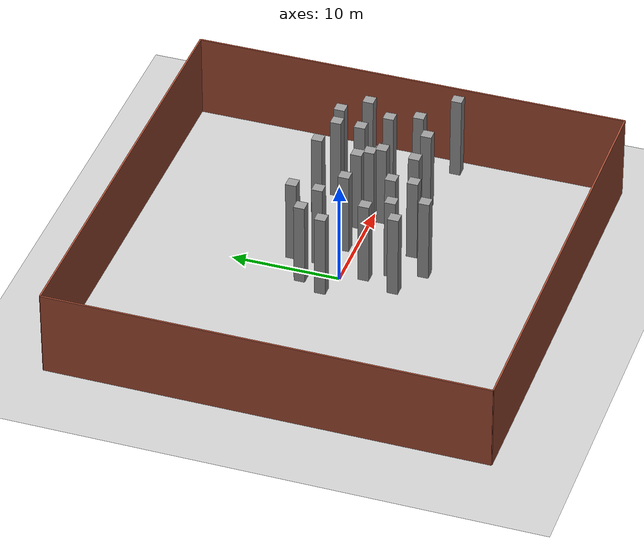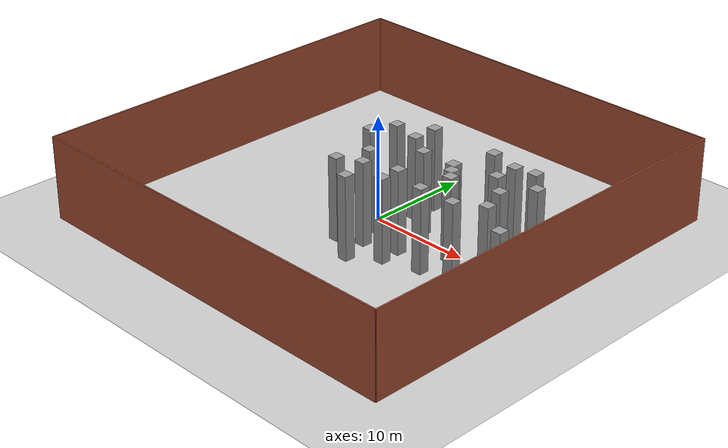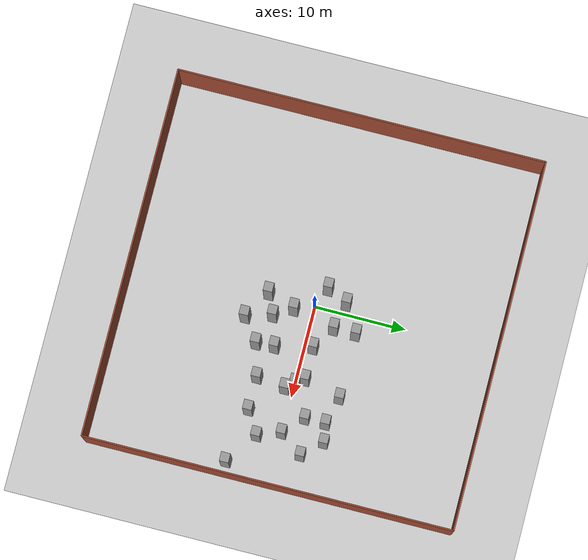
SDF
<sdf version="1.7">
 <world name="default">
  <model name="ground_plane">
   <static>1</static>
   <link name="link">
    <collision name="collision">
     <geometry><plane><normal>0 0 1</normal><size>100 100</size></plane></geometry>
     <surface>
      <contact><collide_bitmask>65535</collide_bitmask></contact>
      <friction><ode><mu>100</mu><mu2>50</mu2></ode></friction>
     </surface>
    </collision>
    <visual name="visual">
     <cast_shadows>0</cast_shadows>
     <geometry><plane><normal>0 0 1</normal><size>100 100</size></plane></geometry>
     <material>
      <script><uri>file://media/materials/scripts/gazebo.material</uri><name>Gazebo/Grey</name></script>
     </material>
    </visual>
   </link>
  </model>
  <model name="sim_room_square">
   <link name="Wall_14">
    <collision name="Wall_14_Collision">
     <geometry><box><size>40 0.15 8</size></box></geometry>
     <pose>0 0 4 0 -0 0</pose>
    </collision>
    <visual name="Wall_14_Visual">
     <pose>0 0 4 0 -0 0</pose>
     <geometry><box><size>40 0.15 8</size></box></geometry>
     <material>
      <script><uri>file://media/materials/scripts/gazebo.material</uri><name>Gazebo/Bricks</name></script>
      <ambient>1 1 1 1</ambient>
     </material>
     <meta><layer>0</layer></meta>
    </visual>
    <pose>20 -0 0 0 -0 -1.5708</pose>
   </link>
   <link name="Wall_15">
    <collision name="Wall_15_Collision">
     <geometry><box><size>40 0.15 8</size></box></geometry>
     <pose>0 0 4 0 -0 0</pose>
    </collision>
    <visual name="Wall_15_Visual">
     <pose>0 0 4 0 -0 0</pose>
     <geometry><box><size>40 0.15 8</size></box></geometry>
     <material>
      <script><uri>file://media/materials/scripts/gazebo.material</uri><name>Gazebo/Bricks</name></script>
      <ambient>1 1 1 1</ambient>
     </material>
     <meta><layer>0</layer></meta>
    </visual>
    <pose>0 -20 0 0 -0 3.14159</pose>
   </link>
   <link name="Wall_16">
    <collision name="Wall_16_Collision">
     <geometry><box><size>40 0.15 8</size></box></geometry>
     <pose>0 0 4 0 -0 0</pose>
    </collision>
    <visual name="Wall_16_Visual">
     <pose>0 0 4 0 -0 0</pose>
     <geometry><box><size>40 0.15 8</size></box></geometry>
     <material>
      <script><uri>file://media/materials/scripts/gazebo.material</uri><name>Gazebo/Bricks</name></script>
      <ambient>1 1 1 1</ambient>
     </material>
     <meta><layer>0</layer></meta>
    </visual>
    <pose>-20 -0 0 0 -0 1.5708</pose>
   </link>
   <link name="Wall_19">
    <collision name="Wall_19_Collision">
     <geometry><box><size>40 0.15 8</size></box></geometry>
     <pose>0 0 4 0 -0 0</pose>
    </collision>
    <visual name="Wall_19_Visual">
     <pose>0 0 4 0 -0 0</pose>
     <geometry><box><size>40 0.15 8</size></box></geometry>
     <material>
      <script><uri>file://media/materials/scripts/gazebo.material</uri><name>Gazebo/Bricks</name></script>
      <ambient>1 1 1 1</ambient>
     </material>
     <meta><layer>0</layer></meta>
    </visual>
    <pose>0 20 0 0 -0 0</pose>
   </link>
   <static>1</static>
  </model>
  <model name="unit_box_static95_clone">
   <link name="link">
    <inertial>
     <mass>1</mass>
     <inertia>
      <ixx>0.166667</ixx>
      <ixy>0</ixy>
      <ixz>0</ixz>
      <iyy>0.166667</iyy>
      <iyz>0</iyz>
      <izz>0.166667</izz>
     </inertia>
    </inertial>
    <visual name="visual">
     <geometry><box><size>1 1 8</size></box></geometry>
     <material>
      <script><name>Gazebo/Grey</name><uri>file://media/materials/scripts/gazebo.material</uri></script>
      <shader type="pixel"/>
     </material>
    </visual>
    <collision name="collision">
     <geometry><box><size>1 1 8</size></box></geometry>
     <surface>
      <friction>
       <ode><mu>1</mu><mu2>1</mu2><fdir1>0 0 0</fdir1><slip1>0</slip1><slip2>0</slip2></ode>
       <torsional>
        <coefficient>1</coefficient>
        <patch_radius>0</patch_radius>
        <surface_radius>0</surface_radius>
        <use_patch_radius>1</use_patch_radius>
        <ode><slip>0</slip></ode>
       </torsional>
      </friction>
      <bounce><restitution_coefficient>0</restitution_coefficient><threshold>1e+06</threshold></bounce>
      <contact>
       <collide_without_contact>0</collide_without_contact>
       <collide_without_contact_bitmask>1</collide_without_contact_bitmask>
       <collide_bitmask>1</collide_bitmask>
       <ode>
        <soft_cfm>0</soft_cfm>
        <soft_erp>0.2</soft_erp>
        <kp>1e+13</kp>
        <kd>1</kd>
        <max_vel>0.01</max_vel>
        <min_depth>0</min_depth>
       </ode>
       <bullet>
        <split_impulse>1</split_impulse>
        <split_impulse_penetration_threshold>-0.01</split_impulse_penetration_threshold>
        <soft_cfm>0</soft_cfm>
        <soft_erp>0.2</soft_erp>
        <kp>1e+13</kp>
        <kd>1</kd>
       </bullet>
      </contact>
     </surface>
    </collision>
   </link>
   <static>1</static>
   <pose>4.50167 1 4 0 -0 0</pose>
  </model>
  <model name="unit_box_static95_clone_0">
   <link name="link">
    <inertial>
     <mass>1</mass>
     <inertia>
      <ixx>0.166667</ixx>
      <ixy>0</ixy>
      <ixz>0</ixz>
      <iyy>0.166667</iyy>
      <iyz>0</iyz>
      <izz>0.166667</izz>
     </inertia>
    </inertial>
    <visual name="visual">
     <geometry><box><size>1 1 8</size></box></geometry>
     <material>
      <script><name>Gazebo/Grey</name><uri>file://media/materials/scripts/gazebo.material</uri></script>
      <shader type="pixel"/>
     </material>
    </visual>
    <collision name="collision">
     <geometry><box><size>1 1 8</size></box></geometry>
     <surface>
      <friction>
       <ode><mu>1</mu><mu2>1</mu2><fdir1>0 0 0</fdir1><slip1>0</slip1><slip2>0</slip2></ode>
       <torsional>
        <coefficient>1</coefficient>
        <patch_radius>0</patch_radius>
        <surface_radius>0</surface_radius>
        <use_patch_radius>1</use_patch_radius>
        <ode><slip>0</slip></ode>
       </torsional>
      </friction>
      <bounce><restitution_coefficient>0</restitution_coefficient><threshold>1e+06</threshold></bounce>
      <contact>
       <collide_without_contact>0</collide_without_contact>
       <collide_without_contact_bitmask>1</collide_without_contact_bitmask>
       <collide_bitmask>1</collide_bitmask>
       <ode>
        <soft_cfm>0</soft_cfm>
        <soft_erp>0.2</soft_erp>
        <kp>1e+13</kp>
        <kd>1</kd>
        <max_vel>0.01</max_vel>
        <min_depth>0</min_depth>
       </ode>
       <bullet>
        <split_impulse>1</split_impulse>
        <split_impulse_penetration_threshold>-0.01</split_impulse_penetration_threshold>
        <soft_cfm>0</soft_cfm>
        <soft_erp>0.2</soft_erp>
        <kp>1e+13</kp>
        <kd>1</kd>
       </bullet>
      </contact>
     </surface>
    </collision>
   </link>
   <static>1</static>
   <pose>5.40845 -3 4 0 -0 0</pose>
  </model>
  <model name="unit_box_static95_clone_1">
   <link name="link">
    <inertial>
     <mass>1</mass>
     <inertia>
      <ixx>0.166667</ixx>
      <ixy>0</ixy>
      <ixz>0</ixz>
      <iyy>0.166667</iyy>
      <iyz>0</iyz>
      <izz>0.166667</izz>
     </inertia>
    </inertial>
    <visual name="visual">
     <geometry><box><size>1 1 8</size></box></geometry>
     <material>
      <script><name>Gazebo/Grey</name><uri>file://media/materials/scripts/gazebo.material</uri></script>
      <shader type="pixel"/>
     </material>
    </visual>
    <collision name="collision">
     <geometry><box><size>1 1 8</size></box></geometry>
     <surface>
      <friction>
       <ode><mu>1</mu><mu2>1</mu2><fdir1>0 0 0</fdir1><slip1>0</slip1><slip2>0</slip2></ode>
       <torsional>
        <coefficient>1</coefficient>
        <patch_radius>0</patch_radius>
        <surface_radius>0</surface_radius>
        <use_patch_radius>1</use_patch_radius>
        <ode><slip>0</slip></ode>
       </torsional>
      </friction>
      <bounce><restitution_coefficient>0</restitution_coefficient><threshold>1e+06</threshold></bounce>
      <contact>
       <collide_without_contact>0</collide_without_contact>
       <collide_without_contact_bitmask>1</collide_without_contact_bitmask>
       <collide_bitmask>1</collide_bitmask>
       <ode>
        <soft_cfm>0</soft_cfm>
        <soft_erp>0.2</soft_erp>
        <kp>1e+13</kp>
        <kd>1</kd>
        <max_vel>0.01</max_vel>
        <min_depth>0</min_depth>
       </ode>
       <bullet>
        <split_impulse>1</split_impulse>
        <split_impulse_penetration_threshold>-0.01</split_impulse_penetration_threshold>
        <soft_cfm>0</soft_cfm>
        <soft_erp>0.2</soft_erp>
        <kp>1e+13</kp>
        <kd>1</kd>
       </bullet>
      </contact>
     </surface>
    </collision>
   </link>
   <static>1</static>
   <pose>5.51513 -5 4 0 -0 0</pose>
  </model>
  <model name="unit_box_static95_clone_2">
   <link name="link">
    <inertial>
     <mass>1</mass>
     <inertia>
      <ixx>0.166667</ixx>
      <ixy>0</ixy>
      <ixz>0</ixz>
      <iyy>0.166667</iyy>
      <iyz>0</iyz>
      <izz>0.166667</izz>
     </inertia>
    </inertial>
    <visual name="visual">
     <geometry><box><size>1 1 8</size></box></geometry>
     <material>
      <script><name>Gazebo/Grey</name><uri>file://media/materials/scripts/gazebo.material</uri></script>
      <shader type="pixel"/>
     </material>
    </visual>
    <collision name="collision">
     <geometry><box><size>1 1 8</size></box></geometry>
     <surface>
      <friction>
       <ode><mu>1</mu><mu2>1</mu2><fdir1>0 0 0</fdir1><slip1>0</slip1><slip2>0</slip2></ode>
       <torsional>
        <coefficient>1</coefficient>
        <patch_radius>0</patch_radius>
        <surface_radius>0</surface_radius>
        <use_patch_radius>1</use_patch_radius>
        <ode><slip>0</slip></ode>
       </torsional>
      </friction>
      <bounce><restitution_coefficient>0</restitution_coefficient><threshold>1e+06</threshold></bounce>
      <contact>
       <collide_without_contact>0</collide_without_contact>
       <collide_without_contact_bitmask>1</collide_without_contact_bitmask>
       <collide_bitmask>1</collide_bitmask>
       <ode>
        <soft_cfm>0</soft_cfm>
        <soft_erp>0.2</soft_erp>
        <kp>1e+13</kp>
        <kd>1</kd>
        <max_vel>0.01</max_vel>
        <min_depth>0</min_depth>
       </ode>
       <bullet>
        <split_impulse>1</split_impulse>
        <split_impulse_penetration_threshold>-0.01</split_impulse_penetration_threshold>
        <soft_cfm>0</soft_cfm>
        <soft_erp>0.2</soft_erp>
        <kp>1e+13</kp>
        <kd>1</kd>
       </bullet>
      </contact>
     </surface>
    </collision>
   </link>
   <static>1</static>
   <pose>2.2148 -4 4 0 -0 0</pose>
  </model>
  <model name="unit_box_static95_clone_3">
   <link name="link">
    <inertial>
     <mass>1</mass>
     <inertia>
      <ixx>0.166667</ixx>
      <ixy>0</ixy>
      <ixz>0</ixz>
      <iyy>0.166667</iyy>
      <iyz>0</iyz>
      <izz>0.166667</izz>
     </inertia>
    </inertial>
    <visual name="visual">
     <geometry><box><size>1 1 8</size></box></geometry>
     <material>
      <script><name>Gazebo/Grey</name><uri>file://media/materials/scripts/gazebo.material</uri></script>
      <shader type="pixel"/>
     </material>
    </visual>
    <collision name="collision">
     <geometry><box><size>1 1 8</size></box></geometry>
     <surface>
      <friction>
       <ode><mu>1</mu><mu2>1</mu2><fdir1>0 0 0</fdir1><slip1>0</slip1><slip2>0</slip2></ode>
       <torsional>
        <coefficient>1</coefficient>
        <patch_radius>0</patch_radius>
        <surface_radius>0</surface_radius>
        <use_patch_radius>1</use_patch_radius>
        <ode><slip>0</slip></ode>
       </torsional>
      </friction>
      <bounce><restitution_coefficient>0</restitution_coefficient><threshold>1e+06</threshold></bounce>
      <contact>
       <collide_without_contact>0</collide_without_contact>
       <collide_without_contact_bitmask>1</collide_without_contact_bitmask>
       <collide_bitmask>1</collide_bitmask>
       <ode>
        <soft_cfm>0</soft_cfm>
        <soft_erp>0.2</soft_erp>
        <kp>1e+13</kp>
        <kd>1</kd>
        <max_vel>0.01</max_vel>
        <min_depth>0</min_depth>
       </ode>
       <bullet>
        <split_impulse>1</split_impulse>
        <split_impulse_penetration_threshold>-0.01</split_impulse_penetration_threshold>
        <soft_cfm>0</soft_cfm>
        <soft_erp>0.2</soft_erp>
        <kp>1e+13</kp>
        <kd>1</kd>
       </bullet>
      </contact>
     </surface>
    </collision>
   </link>
   <static>1</static>
   <pose>0 -5 4 0 -0 0</pose>
  </model>
  <model name="unit_box_static95_clone_18">
   <link name="link">
    <inertial>
     <mass>1</mass>
     <inertia>
      <ixx>0.166667</ixx>
      <ixy>0</ixy>
      <ixz>0</ixz>
      <iyy>0.166667</iyy>
      <iyz>0</iyz>
      <izz>0.166667</izz>
     </inertia>
    </inertial>
    <visual name="visual">
     <geometry><box><size>1 1 8</size></box></geometry>
     <material>
      <script><name>Gazebo/Grey</name><uri>file://media/materials/scripts/gazebo.material</uri></script>
      <shader type="pixel"/>
     </material>
    </visual>
    <collision name="collision">
     <geometry><box><size>1 1 8</size></box></geometry>
     <surface>
      <friction>
       <ode><mu>1</mu><mu2>1</mu2><fdir1>0 0 0</fdir1><slip1>0</slip1><slip2>0</slip2></ode>
       <torsional>
        <coefficient>1</coefficient>
        <patch_radius>0</patch_radius>
        <surface_radius>0</surface_radius>
        <use_patch_radius>1</use_patch_radius>
        <ode><slip>0</slip></ode>
       </torsional>
      </friction>
      <bounce><restitution_coefficient>0</restitution_coefficient><threshold>1e+06</threshold></bounce>
      <contact>
       <collide_without_contact>0</collide_without_contact>
       <collide_without_contact_bitmask>1</collide_without_contact_bitmask>
       <collide_bitmask>1</collide_bitmask>
       <ode>
        <soft_cfm>0</soft_cfm>
        <soft_erp>0.2</soft_erp>
        <kp>1e+13</kp>
        <kd>1</kd>
        <max_vel>0.01</max_vel>
        <min_depth>0</min_depth>
       </ode>
       <bullet>
        <split_impulse>1</split_impulse>
        <split_impulse_penetration_threshold>-0.01</split_impulse_penetration_threshold>
        <soft_cfm>0</soft_cfm>
        <soft_erp>0.2</soft_erp>
        <kp>1e+13</kp>
        <kd>1</kd>
       </bullet>
      </contact>
     </surface>
    </collision>
   </link>
   <static>1</static>
   <pose>-0.912699 3.25316 4 0 -0 0</pose>
  </model>
  <model name="unit_box_static95_clone_19">
   <link name="link">
    <inertial>
     <mass>1</mass>
     <inertia>
      <ixx>0.166667</ixx>
      <ixy>0</ixy>
      <ixz>0</ixz>
      <iyy>0.166667</iyy>
      <iyz>0</iyz>
      <izz>0.166667</izz>
     </inertia>
    </inertial>
    <visual name="visual">
     <geometry><box><size>1 1 8</size></box></geometry>
     <material>
      <script><name>Gazebo/Grey</name><uri>file://media/materials/scripts/gazebo.material</uri></script>
      <shader type="pixel"/>
     </material>
    </visual>
    <collision name="collision">
     <geometry><box><size>1 1 8</size></box></geometry>
     <surface>
      <friction>
       <ode><mu>1</mu><mu2>1</mu2><fdir1>0 0 0</fdir1><slip1>0</slip1><slip2>0</slip2></ode>
       <torsional>
        <coefficient>1</coefficient>
        <patch_radius>0</patch_radius>
        <surface_radius>0</surface_radius>
        <use_patch_radius>1</use_patch_radius>
        <ode><slip>0</slip></ode>
       </torsional>
      </friction>
      <bounce><restitution_coefficient>0</restitution_coefficient><threshold>1e+06</threshold></bounce>
      <contact>
       <collide_without_contact>0</collide_without_contact>
       <collide_without_contact_bitmask>1</collide_without_contact_bitmask>
       <collide_bitmask>1</collide_bitmask>
       <ode>
        <soft_cfm>0</soft_cfm>
        <soft_erp>0.2</soft_erp>
        <kp>1e+13</kp>
        <kd>1</kd>
        <max_vel>0.01</max_vel>
        <min_depth>0</min_depth>
       </ode>
       <bullet>
        <split_impulse>1</split_impulse>
        <split_impulse_penetration_threshold>-0.01</split_impulse_penetration_threshold>
        <soft_cfm>0</soft_cfm>
        <soft_erp>0.2</soft_erp>
        <kp>1e+13</kp>
        <kd>1</kd>
       </bullet>
      </contact>
     </surface>
    </collision>
   </link>
   <static>1</static>
   <pose>2 5 4 0 -0 0</pose>
  </model>
  <model name="unit_box_static95_clone_22">
   <link name="link">
    <inertial>
     <mass>1</mass>
     <inertia>
      <ixx>0.166667</ixx>
      <ixy>0</ixy>
      <ixz>0</ixz>
      <iyy>0.166667</iyy>
      <iyz>0</iyz>
      <izz>0.166667</izz>
     </inertia>
    </inertial>
    <visual name="visual">
     <geometry><box><size>1 1 8</size></box></geometry>
     <material>
      <script><name>Gazebo/Grey</name><uri>file://media/materials/scripts/gazebo.material</uri></script>
      <shader type="pixel"/>
     </material>
    </visual>
    <collision name="collision">
     <geometry><box><size>1 1 8</size></box></geometry>
     <surface>
      <friction>
       <ode><mu>1</mu><mu2>1</mu2><fdir1>0 0 0</fdir1><slip1>0</slip1><slip2>0</slip2></ode>
       <torsional>
        <coefficient>1</coefficient>
        <patch_radius>0</patch_radius>
        <surface_radius>0</surface_radius>
        <use_patch_radius>1</use_patch_radius>
        <ode><slip>0</slip></ode>
       </torsional>
      </friction>
      <bounce><restitution_coefficient>0</restitution_coefficient><threshold>1e+06</threshold></bounce>
      <contact>
       <collide_without_contact>0</collide_without_contact>
       <collide_without_contact_bitmask>1</collide_without_contact_bitmask>
       <collide_bitmask>1</collide_bitmask>
       <ode>
        <soft_cfm>0</soft_cfm>
        <soft_erp>0.2</soft_erp>
        <kp>1e+13</kp>
        <kd>1</kd>
        <max_vel>0.01</max_vel>
        <min_depth>0</min_depth>
       </ode>
       <bullet>
        <split_impulse>1</split_impulse>
        <split_impulse_penetration_threshold>-0.01</split_impulse_penetration_threshold>
        <soft_cfm>0</soft_cfm>
        <soft_erp>0.2</soft_erp>
        <kp>1e+13</kp>
        <kd>1</kd>
       </bullet>
      </contact>
     </surface>
    </collision>
   </link>
   <static>1</static>
   <pose>9 5 4 0 -0 0</pose>
  </model>
  <model name="unit_box_static95_clone_23">
   <link name="link">
    <inertial>
     <mass>1</mass>
     <inertia>
      <ixx>0.166667</ixx>
      <ixy>0</ixy>
      <ixz>0</ixz>
      <iyy>0.166667</iyy>
      <iyz>0</iyz>
      <izz>0.166667</izz>
     </inertia>
    </inertial>
    <visual name="visual">
     <geometry><box><size>1 1 8</size></box></geometry>
     <material>
      <script><name>Gazebo/Grey</name><uri>file://media/materials/scripts/gazebo.material</uri></script>
      <shader type="pixel"/>
     </material>
    </visual>
    <collision name="collision">
     <geometry><box><size>1 1 8</size></box></geometry>
     <surface>
      <friction>
       <ode><mu>1</mu><mu2>1</mu2><fdir1>0 0 0</fdir1><slip1>0</slip1><slip2>0</slip2></ode>
       <torsional>
        <coefficient>1</coefficient>
        <patch_radius>0</patch_radius>
        <surface_radius>0</surface_radius>
        <use_patch_radius>1</use_patch_radius>
        <ode><slip>0</slip></ode>
       </torsional>
      </friction>
      <bounce><restitution_coefficient>0</restitution_coefficient><threshold>1e+06</threshold></bounce>
      <contact>
       <collide_without_contact>0</collide_without_contact>
       <collide_without_contact_bitmask>1</collide_without_contact_bitmask>
       <collide_bitmask>1</collide_bitmask>
       <ode>
        <soft_cfm>0</soft_cfm>
        <soft_erp>0.2</soft_erp>
        <kp>1e+13</kp>
        <kd>1</kd>
        <max_vel>0.01</max_vel>
        <min_depth>0</min_depth>
       </ode>
       <bullet>
        <split_impulse>1</split_impulse>
        <split_impulse_penetration_threshold>-0.01</split_impulse_penetration_threshold>
        <soft_cfm>0</soft_cfm>
        <soft_erp>0.2</soft_erp>
        <kp>1e+13</kp>
        <kd>1</kd>
       </bullet>
      </contact>
     </surface>
    </collision>
   </link>
   <static>1</static>
   <pose>12 2 4 0 -0 0</pose>
  </model>
  <model name="unit_box_static95_clone_24">
   <link name="link">
    <inertial>
     <mass>1</mass>
     <inertia>
      <ixx>0.166667</ixx>
      <ixy>0</ixy>
      <ixz>0</ixz>
      <iyy>0.166667</iyy>
      <iyz>0</iyz>
      <izz>0.166667</izz>
     </inertia>
    </inertial>
    <visual name="visual">
     <geometry><box><size>1 1 8</size></box></geometry>
     <material>
      <script><name>Gazebo/Grey</name><uri>file://media/materials/scripts/gazebo.material</uri></script>
      <shader type="pixel"/>
     </material>
    </visual>
    <collision name="collision">
     <geometry><box><size>1 1 8</size></box></geometry>
     <surface>
      <friction>
       <ode><mu>1</mu><mu2>1</mu2><fdir1>0 0 0</fdir1><slip1>0</slip1><slip2>0</slip2></ode>
       <torsional>
        <coefficient>1</coefficient>
        <patch_radius>0</patch_radius>
        <surface_radius>0</surface_radius>
        <use_patch_radius>1</use_patch_radius>
        <ode><slip>0</slip></ode>
       </torsional>
      </friction>
      <bounce><restitution_coefficient>0</restitution_coefficient><threshold>1e+06</threshold></bounce>
      <contact>
       <collide_without_contact>0</collide_without_contact>
       <collide_without_contact_bitmask>1</collide_without_contact_bitmask>
       <collide_bitmask>1</collide_bitmask>
       <ode>
        <soft_cfm>0</soft_cfm>
        <soft_erp>0.2</soft_erp>
        <kp>1e+13</kp>
        <kd>1</kd>
        <max_vel>0.01</max_vel>
        <min_depth>0</min_depth>
       </ode>
       <bullet>
        <split_impulse>1</split_impulse>
        <split_impulse_penetration_threshold>-0.01</split_impulse_penetration_threshold>
        <soft_cfm>0</soft_cfm>
        <soft_erp>0.2</soft_erp>
        <kp>1e+13</kp>
        <kd>1</kd>
       </bullet>
      </contact>
     </surface>
    </collision>
   </link>
   <static>1</static>
   <pose>15 -2.50734 4 0 -0 0</pose>
  </model>
  <model name="unit_box_static95_clone_55">
   <link name="link">
    <inertial>
     <mass>1</mass>
     <inertia>
      <ixx>0.166667</ixx>
      <ixy>0</ixy>
      <ixz>0</ixz>
      <iyy>0.166667</iyy>
      <iyz>0</iyz>
      <izz>0.166667</izz>
     </inertia>
    </inertial>
    <visual name="visual">
     <geometry><box><size>1 1 8</size></box></geometry>
     <material>
      <script><name>Gazebo/Grey</name><uri>file://media/materials/scripts/gazebo.material</uri></script>
      <shader type="pixel"/>
     </material>
    </visual>
    <collision name="collision">
     <geometry><box><size>1 1 8</size></box></geometry>
     <surface>
      <friction>
       <ode><mu>1</mu><mu2>1</mu2><fdir1>0 0 0</fdir1><slip1>0</slip1><slip2>0</slip2></ode>
       <torsional>
        <coefficient>1</coefficient>
        <patch_radius>0</patch_radius>
        <surface_radius>0</surface_radius>
        <use_patch_radius>1</use_patch_radius>
        <ode><slip>0</slip></ode>
       </torsional>
      </friction>
      <bounce><restitution_coefficient>0</restitution_coefficient><threshold>1e+06</threshold></bounce>
      <contact>
       <collide_without_contact>0</collide_without_contact>
       <collide_without_contact_bitmask>1</collide_without_contact_bitmask>
       <collide_bitmask>1</collide_bitmask>
       <ode>
        <soft_cfm>0</soft_cfm>
        <soft_erp>0.2</soft_erp>
        <kp>1e+13</kp>
        <kd>1</kd>
        <max_vel>0.01</max_vel>
        <min_depth>0</min_depth>
       </ode>
       <bullet>
        <split_impulse>1</split_impulse>
        <split_impulse_penetration_threshold>-0.01</split_impulse_penetration_threshold>
        <soft_cfm>0</soft_cfm>
        <soft_erp>0.2</soft_erp>
        <kp>1e+13</kp>
        <kd>1</kd>
       </bullet>
      </contact>
     </surface>
    </collision>
   </link>
   <static>1</static>
   <pose>9 -4 4 0 -0 0</pose>
  </model>
  <model name="unit_box_static95_clone_56">
   <link name="link">
    <inertial>
     <mass>1</mass>
     <inertia>
      <ixx>0.166667</ixx>
      <ixy>0</ixy>
      <ixz>0</ixz>
      <iyy>0.166667</iyy>
      <iyz>0</iyz>
      <izz>0.166667</izz>
     </inertia>
    </inertial>
    <visual name="visual">
     <geometry><box><size>1 1 8</size></box></geometry>
     <material>
      <script><name>Gazebo/Grey</name><uri>file://media/materials/scripts/gazebo.material</uri></script>
      <shader type="pixel"/>
     </material>
    </visual>
    <collision name="collision">
     <geometry><box><size>1 1 8</size></box></geometry>
     <surface>
      <friction>
       <ode><mu>1</mu><mu2>1</mu2><fdir1>0 0 0</fdir1><slip1>0</slip1><slip2>0</slip2></ode>
       <torsional>
        <coefficient>1</coefficient>
        <patch_radius>0</patch_radius>
        <surface_radius>0</surface_radius>
        <use_patch_radius>1</use_patch_radius>
        <ode><slip>0</slip></ode>
       </torsional>
      </friction>
      <bounce><restitution_coefficient>0</restitution_coefficient><threshold>1e+06</threshold></bounce>
      <contact>
       <collide_without_contact>0</collide_without_contact>
       <collide_without_contact_bitmask>1</collide_without_contact_bitmask>
       <collide_bitmask>1</collide_bitmask>
       <ode>
        <soft_cfm>0</soft_cfm>
        <soft_erp>0.2</soft_erp>
        <kp>1e+13</kp>
        <kd>1</kd>
        <max_vel>0.01</max_vel>
        <min_depth>0</min_depth>
       </ode>
       <bullet>
        <split_impulse>1</split_impulse>
        <split_impulse_penetration_threshold>-0.01</split_impulse_penetration_threshold>
        <soft_cfm>0</soft_cfm>
        <soft_erp>0.2</soft_erp>
        <kp>1e+13</kp>
        <kd>1</kd>
       </bullet>
      </contact>
     </surface>
    </collision>
   </link>
   <static>1</static>
   <pose>8 1 4 0 -0 0</pose>
  </model>
  <model name="unit_box_static95_clone_70">
   <link name="link">
    <inertial>
     <mass>1</mass>
     <inertia>
      <ixx>0.166667</ixx>
      <ixy>0</ixy>
      <ixz>0</ixz>
      <iyy>0.166667</iyy>
      <iyz>0</iyz>
      <izz>0.166667</izz>
     </inertia>
    </inertial>
    <visual name="visual">
     <geometry><box><size>1 1 8</size></box></geometry>
     <material>
      <script><name>Gazebo/Grey</name><uri>file://media/materials/scripts/gazebo.material</uri></script>
      <shader type="pixel"/>
     </material>
    </visual>
    <collision name="collision">
     <geometry><box><size>1 1 8</size></box></geometry>
     <surface>
      <friction>
       <ode><mu>1</mu><mu2>1</mu2><fdir1>0 0 0</fdir1><slip1>0</slip1><slip2>0</slip2></ode>
       <torsional>
        <coefficient>1</coefficient>
        <patch_radius>0</patch_radius>
        <surface_radius>0</surface_radius>
        <use_patch_radius>1</use_patch_radius>
        <ode><slip>0</slip></ode>
       </torsional>
      </friction>
      <bounce><restitution_coefficient>0</restitution_coefficient><threshold>1e+06</threshold></bounce>
      <contact>
       <collide_without_contact>0</collide_without_contact>
       <collide_without_contact_bitmask>1</collide_without_contact_bitmask>
       <collide_bitmask>1</collide_bitmask>
       <ode>
        <soft_cfm>0</soft_cfm>
        <soft_erp>0.2</soft_erp>
        <kp>1e+13</kp>
        <kd>1</kd>
        <max_vel>0.01</max_vel>
        <min_depth>0</min_depth>
       </ode>
       <bullet>
        <split_impulse>1</split_impulse>
        <split_impulse_penetration_threshold>-0.01</split_impulse_penetration_threshold>
        <soft_cfm>0</soft_cfm>
        <soft_erp>0.2</soft_erp>
        <kp>1e+13</kp>
        <kd>1</kd>
       </bullet>
      </contact>
     </surface>
    </collision>
   </link>
   <static>1</static>
   <pose>18.4673 -4.96302 4 0 -0 0</pose>
  </model>
  <model name="unit_box_static95_clone_71">
   <link name="link">
    <inertial>
     <mass>1</mass>
     <inertia>
      <ixx>0.166667</ixx>
      <ixy>0</ixy>
      <ixz>0</ixz>
      <iyy>0.166667</iyy>
      <iyz>0</iyz>
      <izz>0.166667</izz>
     </inertia>
    </inertial>
    <visual name="visual">
     <geometry><box><size>1 1 8</size></box></geometry>
     <material>
      <script><name>Gazebo/Grey</name><uri>file://media/materials/scripts/gazebo.material</uri></script>
      <shader type="pixel"/>
     </material>
    </visual>
    <collision name="collision">
     <geometry><box><size>1 1 8</size></box></geometry>
     <surface>
      <friction>
       <ode><mu>1</mu><mu2>1</mu2><fdir1>0 0 0</fdir1><slip1>0</slip1><slip2>0</slip2></ode>
       <torsional>
        <coefficient>1</coefficient>
        <patch_radius>0</patch_radius>
        <surface_radius>0</surface_radius>
        <use_patch_radius>1</use_patch_radius>
        <ode><slip>0</slip></ode>
       </torsional>
      </friction>
      <bounce><restitution_coefficient>0</restitution_coefficient><threshold>1e+06</threshold></bounce>
      <contact>
       <collide_without_contact>0</collide_without_contact>
       <collide_without_contact_bitmask>1</collide_without_contact_bitmask>
       <collide_bitmask>1</collide_bitmask>
       <ode>
        <soft_cfm>0</soft_cfm>
        <soft_erp>0.2</soft_erp>
        <kp>1e+13</kp>
        <kd>1</kd>
        <max_vel>0.01</max_vel>
        <min_depth>0</min_depth>
       </ode>
       <bullet>
        <split_impulse>1</split_impulse>
        <split_impulse_penetration_threshold>-0.01</split_impulse_penetration_threshold>
        <soft_cfm>0</soft_cfm>
        <soft_erp>0.2</soft_erp>
        <kp>1e+13</kp>
        <kd>1</kd>
       </bullet>
      </contact>
     </surface>
    </collision>
   </link>
   <static>1</static>
   <pose>14.0793 0 4 0 -0 0</pose>
  </model>
  <model name="unit_box_static95_clone_87">
   <link name="link">
    <inertial>
     <mass>1</mass>
     <inertia>
      <ixx>0.166667</ixx>
      <ixy>0</ixy>
      <ixz>0</ixz>
      <iyy>0.166667</iyy>
      <iyz>0</iyz>
      <izz>0.166667</izz>
     </inertia>
    </inertial>
    <visual name="visual">
     <geometry><box><size>1 1 8</size></box></geometry>
     <material>
      <script><name>Gazebo/Grey</name><uri>file://media/materials/scripts/gazebo.material</uri></script>
      <shader type="pixel"/>
     </material>
    </visual>
    <collision name="collision">
     <geometry><box><size>1 1 8</size></box></geometry>
     <surface>
      <friction>
       <ode><mu>1</mu><mu2>1</mu2><fdir1>0 0 0</fdir1><slip1>0</slip1><slip2>0</slip2></ode>
       <torsional>
        <coefficient>1</coefficient>
        <patch_radius>0</patch_radius>
        <surface_radius>0</surface_radius>
        <use_patch_radius>1</use_patch_radius>
        <ode><slip>0</slip></ode>
       </torsional>
      </friction>
      <bounce><restitution_coefficient>0</restitution_coefficient><threshold>1e+06</threshold></bounce>
      <contact>
       <collide_without_contact>0</collide_without_contact>
       <collide_without_contact_bitmask>1</collide_without_contact_bitmask>
       <collide_bitmask>1</collide_bitmask>
       <ode>
        <soft_cfm>0</soft_cfm>
        <soft_erp>0.2</soft_erp>
        <kp>1e+13</kp>
        <kd>1</kd>
        <max_vel>0.01</max_vel>
        <min_depth>0</min_depth>
       </ode>
       <bullet>
        <split_impulse>1</split_impulse>
        <split_impulse_penetration_threshold>-0.01</split_impulse_penetration_threshold>
        <soft_cfm>0</soft_cfm>
        <soft_erp>0.2</soft_erp>
        <kp>1e+13</kp>
        <kd>1</kd>
       </bullet>
      </contact>
     </surface>
    </collision>
   </link>
   <static>1</static>
   <pose>12.5491 -4 4 0 -0 0</pose>
  </model>
  <model name="unit_box_static95_clone_92">
   <link name="link">
    <inertial>
     <mass>1</mass>
     <inertia>
      <ixx>0.166667</ixx>
      <ixy>0</ixy>
      <ixz>0</ixz>
      <iyy>0.166667</iyy>
      <iyz>0</iyz>
      <izz>0.166667</izz>
     </inertia>
    </inertial>
    <visual name="visual">
     <geometry><box><size>1 1 8</size></box></geometry>
     <material>
      <script><name>Gazebo/Grey</name><uri>file://media/materials/scripts/gazebo.material</uri></script>
      <shader type="pixel"/>
     </material>
    </visual>
    <collision name="collision">
     <geometry><box><size>1 1 8</size></box></geometry>
     <surface>
      <friction>
       <ode><mu>1</mu><mu2>1</mu2><fdir1>0 0 0</fdir1><slip1>0</slip1><slip2>0</slip2></ode>
       <torsional>
        <coefficient>1</coefficient>
        <patch_radius>0</patch_radius>
        <surface_radius>0</surface_radius>
        <use_patch_radius>1</use_patch_radius>
        <ode><slip>0</slip></ode>
       </torsional>
      </friction>
      <bounce><restitution_coefficient>0</restitution_coefficient><threshold>1e+06</threshold></bounce>
      <contact>
       <collide_without_contact>0</collide_without_contact>
       <collide_without_contact_bitmask>1</collide_without_contact_bitmask>
       <collide_bitmask>1</collide_bitmask>
       <ode>
        <soft_cfm>0</soft_cfm>
        <soft_erp>0.2</soft_erp>
        <kp>1e+13</kp>
        <kd>1</kd>
        <max_vel>0.01</max_vel>
        <min_depth>0</min_depth>
       </ode>
       <bullet>
        <split_impulse>1</split_impulse>
        <split_impulse_penetration_threshold>-0.01</split_impulse_penetration_threshold>
        <soft_cfm>0</soft_cfm>
        <soft_erp>0.2</soft_erp>
        <kp>1e+13</kp>
        <kd>1</kd>
       </bullet>
      </contact>
     </surface>
    </collision>
   </link>
   <static>1</static>
   <pose>1 -2 4 0 -0 0</pose>
  </model>
  <model name="unit_box_static95_clone_93">
   <link name="link">
    <inertial>
     <mass>1</mass>
     <inertia>
      <ixx>0.166667</ixx>
      <ixy>0</ixy>
      <ixz>0</ixz>
      <iyy>0.166667</iyy>
      <iyz>0</iyz>
      <izz>0.166667</izz>
     </inertia>
    </inertial>
    <visual name="visual">
     <geometry><box><size>1 1 8</size></box></geometry>
     <material>
      <script><name>Gazebo/Grey</name><uri>file://media/materials/scripts/gazebo.material</uri></script>
      <shader type="pixel"/>
     </material>
    </visual>
    <collision name="collision">
     <geometry><box><size>1 1 8</size></box></geometry>
     <surface>
      <friction>
       <ode><mu>1</mu><mu2>1</mu2><fdir1>0 0 0</fdir1><slip1>0</slip1><slip2>0</slip2></ode>
       <torsional>
        <coefficient>1</coefficient>
        <patch_radius>0</patch_radius>
        <surface_radius>0</surface_radius>
        <use_patch_radius>1</use_patch_radius>
        <ode><slip>0</slip></ode>
       </torsional>
      </friction>
      <bounce><restitution_coefficient>0</restitution_coefficient><threshold>1e+06</threshold></bounce>
      <contact>
       <collide_without_contact>0</collide_without_contact>
       <collide_without_contact_bitmask>1</collide_without_contact_bitmask>
       <collide_bitmask>1</collide_bitmask>
       <ode>
        <soft_cfm>0</soft_cfm>
        <soft_erp>0.2</soft_erp>
        <kp>1e+13</kp>
        <kd>1</kd>
        <max_vel>0.01</max_vel>
        <min_depth>0</min_depth>
       </ode>
       <bullet>
        <split_impulse>1</split_impulse>
        <split_impulse_penetration_threshold>-0.01</split_impulse_penetration_threshold>
        <soft_cfm>0</soft_cfm>
        <soft_erp>0.2</soft_erp>
        <kp>1e+13</kp>
        <kd>1</kd>
       </bullet>
      </contact>
     </surface>
    </collision>
   </link>
   <static>1</static>
   <pose>-2 1 4 0 -0 0</pose>
  </model>
  <model name="unit_box_static95_clone_94">
   <link name="link">
    <inertial>
     <mass>1</mass>
     <inertia>
      <ixx>0.166667</ixx>
      <ixy>0</ixy>
      <ixz>0</ixz>
      <iyy>0.166667</iyy>
      <iyz>0</iyz>
      <izz>0.166667</izz>
     </inertia>
    </inertial>
    <visual name="visual">
     <geometry><box><size>1 1 8</size></box></geometry>
     <material>
      <script><name>Gazebo/Grey</name><uri>file://media/materials/scripts/gazebo.material</uri></script>
      <shader type="pixel"/>
     </material>
    </visual>
    <collision name="collision">
     <geometry><box><size>1 1 8</size></box></geometry>
     <surface>
      <friction>
       <ode><mu>1</mu><mu2>1</mu2><fdir1>0 0 0</fdir1><slip1>0</slip1><slip2>0</slip2></ode>
       <torsional>
        <coefficient>1</coefficient>
        <patch_radius>0</patch_radius>
        <surface_radius>0</surface_radius>
        <use_patch_radius>1</use_patch_radius>
        <ode><slip>0</slip></ode>
       </torsional>
      </friction>
      <bounce><restitution_coefficient>0</restitution_coefficient><threshold>1e+06</threshold></bounce>
      <contact>
       <collide_without_contact>0</collide_without_contact>
       <collide_without_contact_bitmask>1</collide_without_contact_bitmask>
       <collide_bitmask>1</collide_bitmask>
       <ode>
        <soft_cfm>0</soft_cfm>
        <soft_erp>0.2</soft_erp>
        <kp>1e+13</kp>
        <kd>1</kd>
        <max_vel>0.01</max_vel>
        <min_depth>0</min_depth>
       </ode>
       <bullet>
        <split_impulse>1</split_impulse>
        <split_impulse_penetration_threshold>-0.01</split_impulse_penetration_threshold>
        <soft_cfm>0</soft_cfm>
        <soft_erp>0.2</soft_erp>
        <kp>1e+13</kp>
        <kd>1</kd>
       </bullet>
      </contact>
     </surface>
    </collision>
   </link>
   <static>1</static>
   <pose>2 2.59577 4 0 -0 0</pose>
  </model>
  <model name="unit_box_static95_clone_96">
   <link name="link">
    <inertial>
     <mass>1</mass>
     <inertia>
      <ixx>0.166667</ixx>
      <ixy>0</ixy>
      <ixz>0</ixz>
      <iyy>0.166667</iyy>
      <iyz>0</iyz>
      <izz>0.166667</izz>
     </inertia>
    </inertial>
    <visual name="visual">
     <geometry><box><size>1 1 8</size></box></geometry>
     <material>
      <script><name>Gazebo/Grey</name><uri>file://media/materials/scripts/gazebo.material</uri></script>
      <shader type="pixel"/>
     </material>
    </visual>
    <collision name="collision">
     <geometry><box><size>1 1 8</size></box></geometry>
     <surface>
      <friction>
       <ode><mu>1</mu><mu2>1</mu2><fdir1>0 0 0</fdir1><slip1>0</slip1><slip2>0</slip2></ode>
       <torsional>
        <coefficient>1</coefficient>
        <patch_radius>0</patch_radius>
        <surface_radius>0</surface_radius>
        <use_patch_radius>1</use_patch_radius>
        <ode><slip>0</slip></ode>
       </torsional>
      </friction>
      <bounce><restitution_coefficient>0</restitution_coefficient><threshold>1e+06</threshold></bounce>
      <contact>
       <collide_without_contact>0</collide_without_contact>
       <collide_without_contact_bitmask>1</collide_without_contact_bitmask>
       <collide_bitmask>1</collide_bitmask>
       <ode>
        <soft_cfm>0</soft_cfm>
        <soft_erp>0.2</soft_erp>
        <kp>1e+13</kp>
        <kd>1</kd>
        <max_vel>0.01</max_vel>
        <min_depth>0</min_depth>
       </ode>
       <bullet>
        <split_impulse>1</split_impulse>
        <split_impulse_penetration_threshold>-0.01</split_impulse_penetration_threshold>
        <soft_cfm>0</soft_cfm>
        <soft_erp>0.2</soft_erp>
        <kp>1e+13</kp>
        <kd>1</kd>
       </bullet>
      </contact>
     </surface>
    </collision>
   </link>
   <static>1</static>
   <pose>12.0025 4.24166 4 0 -0 0</pose>
  </model>
  <model name="unit_box_static95_clone_97">
   <link name="link">
    <inertial>
     <mass>1</mass>
     <inertia>
      <ixx>0.166667</ixx>
      <ixy>0</ixy>
      <ixz>0</ixz>
      <iyy>0.166667</iyy>
      <iyz>0</iyz>
      <izz>0.166667</izz>
     </inertia>
    </inertial>
    <visual name="visual">
     <geometry><box><size>1 1 8</size></box></geometry>
     <material>
      <script><name>Gazebo/Grey</name><uri>file://media/materials/scripts/gazebo.material</uri></script>
      <shader type="pixel"/>
     </material>
    </visual>
    <collision name="collision">
     <geometry><box><size>1 1 8</size></box></geometry>
     <surface>
      <friction>
       <ode><mu>1</mu><mu2>1</mu2><fdir1>0 0 0</fdir1><slip1>0</slip1><slip2>0</slip2></ode>
       <torsional>
        <coefficient>1</coefficient>
        <patch_radius>0</patch_radius>
        <surface_radius>0</surface_radius>
        <use_patch_radius>1</use_patch_radius>
        <ode><slip>0</slip></ode>
       </torsional>
      </friction>
      <bounce><restitution_coefficient>0</restitution_coefficient><threshold>1e+06</threshold></bounce>
      <contact>
       <collide_without_contact>0</collide_without_contact>
       <collide_without_contact_bitmask>1</collide_without_contact_bitmask>
       <collide_bitmask>1</collide_bitmask>
       <ode>
        <soft_cfm>0</soft_cfm>
        <soft_erp>0.2</soft_erp>
        <kp>1e+13</kp>
        <kd>1</kd>
        <max_vel>0.01</max_vel>
        <min_depth>0</min_depth>
       </ode>
       <bullet>
        <split_impulse>1</split_impulse>
        <split_impulse_penetration_threshold>-0.01</split_impulse_penetration_threshold>
        <soft_cfm>0</soft_cfm>
        <soft_erp>0.2</soft_erp>
        <kp>1e+13</kp>
        <kd>1</kd>
       </bullet>
      </contact>
     </surface>
    </collision>
   </link>
   <static>1</static>
   <pose>14 4.55926 4 0 -0 0</pose>
  </model>
  <model name="unit_box_static95_clone_100">
   <link name="link">
    <inertial>
     <mass>1</mass>
     <inertia>
      <ixx>0.166667</ixx>
      <ixy>0</ixy>
      <ixz>0</ixz>
      <iyy>0.166667</iyy>
      <iyz>0</iyz>
      <izz>0.166667</izz>
     </inertia>
    </inertial>
    <visual name="visual">
     <geometry><box><size>1 1 8</size></box></geometry>
     <material>
      <script><name>Gazebo/Grey</name><uri>file://media/materials/scripts/gazebo.material</uri></script>
      <shader type="pixel"/>
     </material>
    </visual>
    <collision name="collision">
     <geometry><box><size>1 1 8</size></box></geometry>
     <surface>
      <friction>
       <ode><mu>1</mu><mu2>1</mu2><fdir1>0 0 0</fdir1><slip1>0</slip1><slip2>0</slip2></ode>
       <torsional>
        <coefficient>1</coefficient>
        <patch_radius>0</patch_radius>
        <surface_radius>0</surface_radius>
        <use_patch_radius>1</use_patch_radius>
        <ode><slip>0</slip></ode>
       </torsional>
      </friction>
      <bounce><restitution_coefficient>0</restitution_coefficient><threshold>1e+06</threshold></bounce>
      <contact>
       <collide_without_contact>0</collide_without_contact>
       <collide_without_contact_bitmask>1</collide_without_contact_bitmask>
       <collide_bitmask>1</collide_bitmask>
       <ode>
        <soft_cfm>0</soft_cfm>
        <soft_erp>0.2</soft_erp>
        <kp>1e+13</kp>
        <kd>1</kd>
        <max_vel>0.01</max_vel>
        <min_depth>0</min_depth>
       </ode>
       <bullet>
        <split_impulse>1</split_impulse>
        <split_impulse_penetration_threshold>-0.01</split_impulse_penetration_threshold>
        <soft_cfm>0</soft_cfm>
        <soft_erp>0.2</soft_erp>
        <kp>1e+13</kp>
        <kd>1</kd>
       </bullet>
      </contact>
     </surface>
    </collision>
   </link>
   <static>1</static>
   <pose>8.68954 0.05532 4 0 -0 0</pose>
  </model>
  <model name="unit_box_static95_clone_101">
   <link name="link">
    <inertial>
     <mass>1</mass>
     <inertia>
      <ixx>0.166667</ixx>
      <ixy>0</ixy>
      <ixz>0</ixz>
      <iyy>0.166667</iyy>
      <iyz>0</iyz>
      <izz>0.166667</izz>
     </inertia>
    </inertial>
    <visual name="visual">
     <geometry><box><size>1 1 8</size></box></geometry>
     <material>
      <script><name>Gazebo/Grey</name><uri>file://media/materials/scripts/gazebo.material</uri></script>
      <shader type="pixel"/>
     </material>
    </visual>
    <collision name="collision">
     <geometry><box><size>1 1 8</size></box></geometry>
     <surface>
      <friction>
       <ode><mu>1</mu><mu2>1</mu2><fdir1>0 0 0</fdir1><slip1>0</slip1><slip2>0</slip2></ode>
       <torsional>
        <coefficient>1</coefficient>
        <patch_radius>0</patch_radius>
        <surface_radius>0</surface_radius>
        <use_patch_radius>1</use_patch_radius>
        <ode><slip>0</slip></ode>
       </torsional>
      </friction>
      <bounce><restitution_coefficient>0</restitution_coefficient><threshold>1e+06</threshold></bounce>
      <contact>
       <collide_without_contact>0</collide_without_contact>
       <collide_without_contact_bitmask>1</collide_without_contact_bitmask>
       <collide_bitmask>1</collide_bitmask>
       <ode>
        <soft_cfm>0</soft_cfm>
        <soft_erp>0.2</soft_erp>
        <kp>1e+13</kp>
        <kd>1</kd>
        <max_vel>0.01</max_vel>
        <min_depth>0</min_depth>
       </ode>
       <bullet>
        <split_impulse>1</split_impulse>
        <split_impulse_penetration_threshold>-0.01</split_impulse_penetration_threshold>
        <soft_cfm>0</soft_cfm>
        <soft_erp>0.2</soft_erp>
        <kp>1e+13</kp>
        <kd>1</kd>
       </bullet>
      </contact>
     </surface>
    </collision>
   </link>
   <static>1</static>
   <pose>9.39432 -0.864056 4 0 -0 0</pose>
  </model>
  <model name="unit_box_static95_clone_102">
   <link name="link">
    <inertial>
     <mass>1</mass>
     <inertia>
      <ixx>0.166667</ixx>
      <ixy>0</ixy>
      <ixz>0</ixz>
      <iyy>0.166667</iyy>
      <iyz>0</iyz>
      <izz>0.166667</izz>
     </inertia>
    </inertial>
    <visual name="visual">
     <geometry><box><size>1 1 8</size></box></geometry>
     <material>
      <script><name>Gazebo/Grey</name><uri>file://media/materials/scripts/gazebo.material</uri></script>
      <shader type="pixel"/>
     </material>
    </visual>
    <collision name="collision">
     <geometry><box><size>1 1 8</size></box></geometry>
     <surface>
      <friction>
       <ode><mu>1</mu><mu2>1</mu2><fdir1>0 0 0</fdir1><slip1>0</slip1><slip2>0</slip2></ode>
       <torsional>
        <coefficient>1</coefficient>
        <patch_radius>0</patch_radius>
        <surface_radius>0</surface_radius>
        <use_patch_radius>1</use_patch_radius>
        <ode><slip>0</slip></ode>
       </torsional>
      </friction>
      <bounce><restitution_coefficient>0</restitution_coefficient><threshold>1e+06</threshold></bounce>
      <contact>
       <collide_without_contact>0</collide_without_contact>
       <collide_without_contact_bitmask>1</collide_without_contact_bitmask>
       <collide_bitmask>1</collide_bitmask>
       <ode>
        <soft_cfm>0</soft_cfm>
        <soft_erp>0.2</soft_erp>
        <kp>1e+13</kp>
        <kd>1</kd>
        <max_vel>0.01</max_vel>
        <min_depth>0</min_depth>
       </ode>
       <bullet>
        <split_impulse>1</split_impulse>
        <split_impulse_penetration_threshold>-0.01</split_impulse_penetration_threshold>
        <soft_cfm>0</soft_cfm>
        <soft_erp>0.2</soft_erp>
        <kp>1e+13</kp>
        <kd>1</kd>
       </bullet>
      </contact>
     </surface>
    </collision>
   </link>
   <static>1</static>
   <pose>15.9078 2.49531 4 0 -0 0</pose>
  </model>
  <model name="unit_box_static95_clone_116">
   <link name="link">
    <inertial>
     <mass>1</mass>
     <inertia>
      <ixx>0.166667</ixx>
      <ixy>0</ixy>
      <ixz>0</ixz>
      <iyy>0.166667</iyy>
      <iyz>0</iyz>
      <izz>0.166667</izz>
     </inertia>
    </inertial>
    <visual name="visual">
     <geometry><box><size>1 1 8</size></box></geometry>
     <material>
      <script><name>Gazebo/Grey</name><uri>file://media/materials/scripts/gazebo.material</uri></script>
      <shader type="pixel"/>
     </material>
    </visual>
    <collision name="collision">
     <geometry><box><size>1 1 8</size></box></geometry>
     <surface>
      <friction>
       <ode><mu>1</mu><mu2>1</mu2><fdir1>0 0 0</fdir1><slip1>0</slip1><slip2>0</slip2></ode>
       <torsional>
        <coefficient>1</coefficient>
        <patch_radius>0</patch_radius>
        <surface_radius>0</surface_radius>
        <use_patch_radius>1</use_patch_radius>
        <ode><slip>0</slip></ode>
       </torsional>
      </friction>
      <bounce><restitution_coefficient>0</restitution_coefficient><threshold>1e+06</threshold></bounce>
      <contact>
       <collide_without_contact>0</collide_without_contact>
       <collide_without_contact_bitmask>1</collide_without_contact_bitmask>
       <collide_bitmask>1</collide_bitmask>
       <ode>
        <soft_cfm>0</soft_cfm>
        <soft_erp>0.2</soft_erp>
        <kp>1e+13</kp>
        <kd>1</kd>
        <max_vel>0.01</max_vel>
        <min_depth>0</min_depth>
       </ode>
       <bullet>
        <split_impulse>1</split_impulse>
        <split_impulse_penetration_threshold>-0.01</split_impulse_penetration_threshold>
        <soft_cfm>0</soft_cfm>
        <soft_erp>0.2</soft_erp>
        <kp>1e+13</kp>
        <kd>1</kd>
       </bullet>
      </contact>
     </surface>
    </collision>
   </link>
   <static>1</static>
   <pose>3.03046 -6.83105 4 0 -0 0</pose>
  </model>
 </world>
</sdf>
